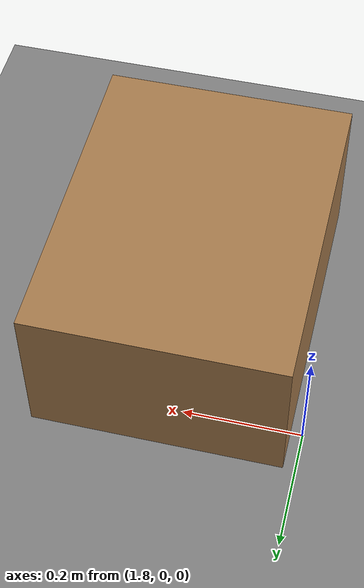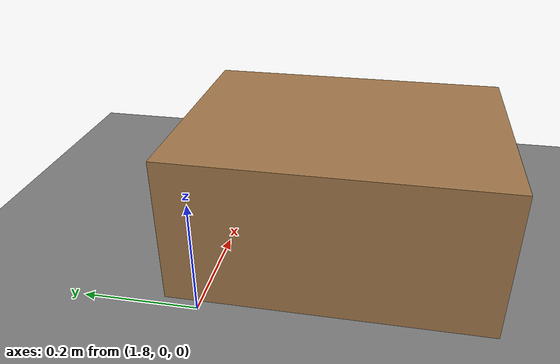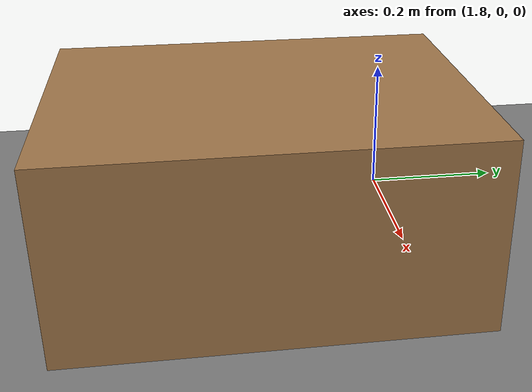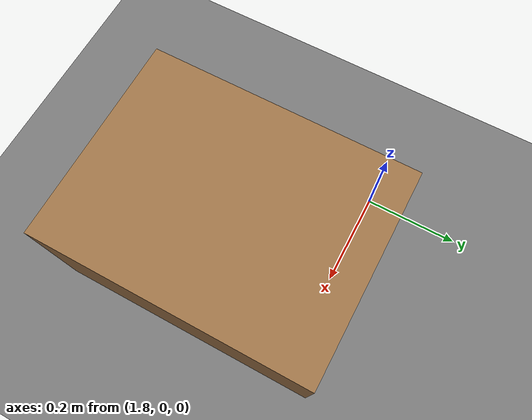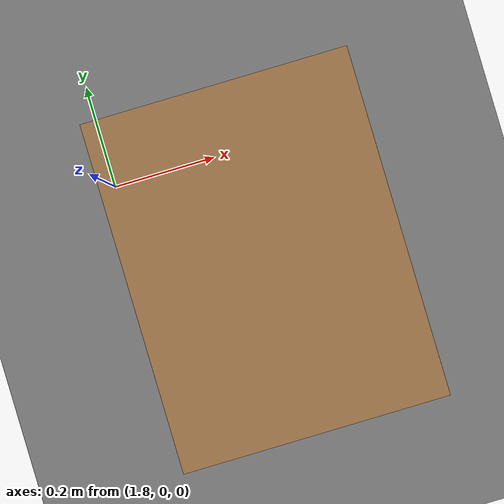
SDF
<sdf version="1.9">
 <world name="ecps295_lowbox_s24_monitor">
  <model name="ground_plane">
   <static>true</static>
   <link name="link">
    <collision name="collision">
     <geometry><plane><normal>0 0 1</normal><size>50 50</size></plane></geometry>
    </collision>
    <visual name="visual">
     <geometry><plane><normal>0 0 1</normal><size>50 50</size></plane></geometry>
     <material><ambient>0.5 0.5 0.5 1</ambient><diffuse>0.5 0.5 0.5 1</diffuse></material>
    </visual>
   </link>
  </model>
  <model name="lb0">
   <static>true</static>
   <pose>2.03 -0.21 0.128 0 0 0</pose>
   <link name="link">
    <collision name="c"><geometry><box><size>0.42 0.55 0.26</size></box></geometry></collision>
    <visual name="v">
     <geometry><box><size>0.42 0.55 0.26</size></box></geometry>
     <material><ambient>0.65 0.48 0.30 1</ambient><diffuse>0.65 0.48 0.30 1</diffuse></material>
    </visual>
   </link>
  </model>
 </world>
</sdf>
